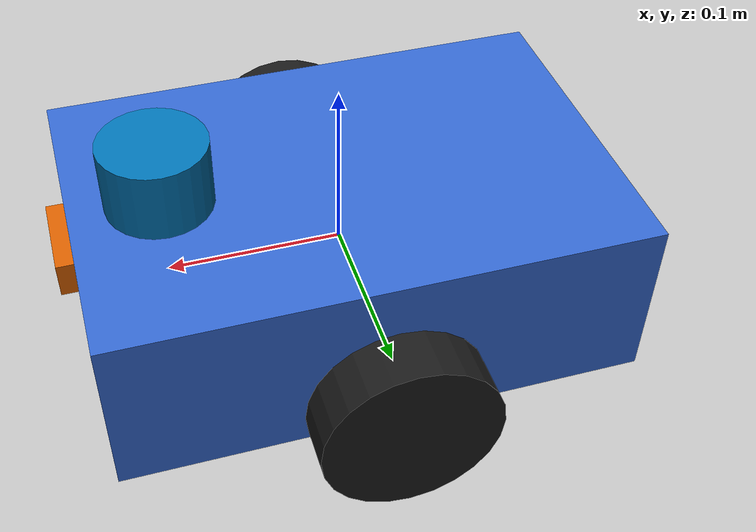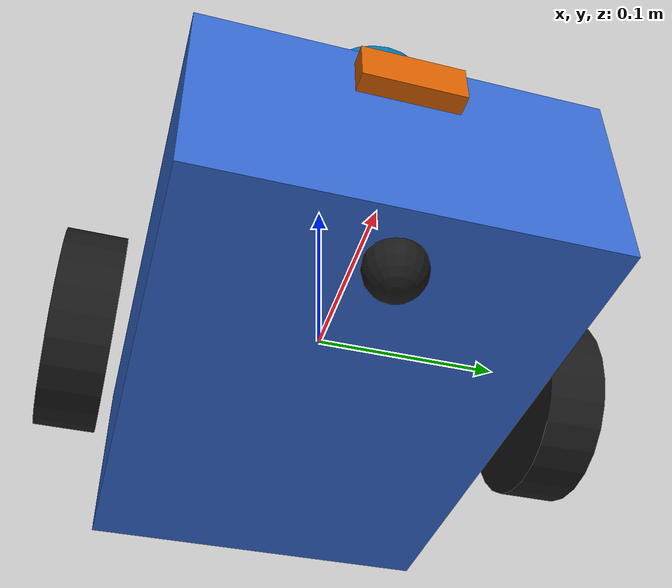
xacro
<?xml version="1.0"?>
<robot name="mi_robot" xmlns:xacro="http://www.ros.org/wiki/xacro">

  <xacro:property name="rueda_radio" value="0.05"/>
  <xacro:property name="rueda_ancho" value="0.03"/>
  <xacro:property name="separacion_ruedas" value="0.25"/>

  <link name="base_link">
    <visual>
      <geometry><box size="0.3 0.2 0.1"/></geometry>
      <material name="azul"><color rgba="0.2 0.4 0.8 1"/></material>
    </visual>
    <collision>
      <geometry><box size="0.3 0.2 0.1"/></geometry>
    </collision>
    <inertial>
      <mass value="1.0"/>
      <inertia
        ixx="${1.0*(0.2*0.2 + 0.1*0.1)/12.0}"
        ixy="0.0"
        ixz="0.0"
        iyy="${1.0*(0.3*0.3 + 0.1*0.1)/12.0}"
        iyz="0.0"
        izz="${1.0*(0.3*0.3 + 0.2*0.2)/12.0}"/>
    </inertial>
  </link>

  <xacro:macro name="rueda" params="prefijo y_signo">
    <link name="rueda_${prefijo}">
      <visual>
        <geometry><cylinder radius="${rueda_radio}" length="${rueda_ancho}"/></geometry>
        <material name="negro"><color rgba="0.1 0.1 0.1 1"/></material>
      </visual>
      <collision>
        <geometry><cylinder radius="${rueda_radio}" length="${rueda_ancho}"/></geometry>
      </collision>
      <inertial>
        <mass value="0.1"/>
        <inertia
          ixx="${0.1*(3*rueda_radio*rueda_radio + rueda_ancho*rueda_ancho)/12.0}"
          ixy="0.0"
          ixz="0.0"
          iyy="${0.1*(3*rueda_radio*rueda_radio + rueda_ancho*rueda_ancho)/12.0}"
          iyz="0.0"
          izz="${0.1*rueda_radio*rueda_radio/2.0}"/>
      </inertial>
    </link>

    <joint name="joint_rueda_${prefijo}" type="continuous">
      <parent link="base_link"/>
      <child link="rueda_${prefijo}"/>
      <origin xyz="0 ${y_signo * separacion_ruedas/2} -0.02" rpy="-1.5708 0 0"/>
      <axis xyz="0 0 1"/>
    </joint>
  </xacro:macro>

  <xacro:rueda prefijo="izq" y_signo="1"/>
  <xacro:rueda prefijo="der" y_signo="-1"/>
  <xacro:property name="caster_radio" value="0.015"/>
  <xacro:property name="caster_masa" value="0.05"/>

  <link name="caster_link">
    <visual>
      <geometry>
        <sphere radius="${caster_radio}"/>
      </geometry>
      <material name="negro"/>
    </visual>

    <collision>
      <geometry>
        <sphere radius="${caster_radio}"/>
      </geometry>
    </collision>

    <inertial>
      <mass value="${caster_masa}"/>
      <inertia
        ixx="${2.0*caster_masa*caster_radio*caster_radio/5.0}"
        ixy="0"
        ixz="0"
        iyy="${2.0*caster_masa*caster_radio*caster_radio/5.0}"
        iyz="0"
        izz="${2.0*caster_masa*caster_radio*caster_radio/5.0}"/>
    </inertial>
  </link>

  <joint name="joint_caster" type="fixed">
    <parent link="base_link"/>
    <child link="caster_link"/>
    <origin xyz="0.12 0 -0.055" rpy="0 0 0"/>
  </joint>

  <link name="lidar_link">
    <visual><geometry><cylinder radius="0.03" length="0.04"/></geometry></visual>
    <collision><geometry><cylinder radius="0.03" length="0.04"/></geometry></collision>
    <inertial>
      <mass value="0.05"/>
      <inertia ixx="${0.05*(3*0.03*0.03 + 0.04*0.04)/12.0}" ixy="0" ixz="0" iyy="${0.05*(3*0.03*0.03 + 0.04*0.04)/12.0}" iyz="0" izz="${0.05*0.03*0.03/2.0}"/>
    </inertial>

  </link>

  <joint name="joint_lidar" type="fixed">
    <parent link="base_link"/>
    <child link="lidar_link"/>
    <origin xyz="0.1 0 0.07" rpy="0 0 0"/>
  </joint>

  <link name="camera_link">
    <visual><geometry><box size="0.02 0.05 0.02"/></geometry></visual>
    <collision><geometry><box size="0.02 0.05 0.02"/></geometry></collision>
    <inertial>
      <mass value="0.02"/>
      <inertia
        ixx="${0.02*(0.05*0.05 + 0.02*0.02)/12.0}"
        ixy="0"
        ixz="0"
        iyy="${0.02*(0.02*0.02 + 0.02*0.02)/12.0}"
        iyz="0"
        izz="${0.02*(0.02*0.02 + 0.05*0.05)/12.0}"/>
    </inertial>
  </link>
  <joint name="joint_camera" type="fixed">
    <parent link="base_link"/>
    <child link="camera_link"/>
    <origin xyz="0.15 0 0.03" rpy="0 0 0"/>
  </joint>
  <link name="camera_optical_link"/>

  <joint name="joint_camera_optical" type="fixed">
    <parent link="camera_link"/>
    <child link="camera_optical_link"/>
    <origin xyz="0 0 0" rpy="${-pi/2} 0 ${-pi/2}"/>
  </joint>

  <gazebo>
    <plugin filename="gz-sim-diff-drive-system" name="gz::sim::systems::DiffDrive">
      <left_joint>joint_rueda_izq</left_joint>
      <right_joint>joint_rueda_der</right_joint>
      <wheel_separation>${separacion_ruedas}</wheel_separation>
      <wheel_radius>${rueda_radio}</wheel_radius>
      <odom_publish_frequency>30</odom_publish_frequency>
      <topic>cmd_vel</topic>
      <odom_topic>odom</odom_topic>
      <frame_id>odom</frame_id>
      <child_frame_id>base_link</child_frame_id>
    </plugin>
        <plugin filename="gz-sim-joint-state-publisher-system"
            name="gz::sim::systems::JointStatePublisher">
      <topic>/world/pista/model/mi_robot/joint_state</topic>
      <joint_name>joint_rueda_izq</joint_name>
      <joint_name>joint_rueda_der</joint_name>
    </plugin>
  </gazebo>

  <gazebo reference="caster_link">
    <mu1>0.01</mu1>
    <mu2>0.01</mu2>
  </gazebo>

  <gazebo reference="lidar_link">
    <sensor name="lidar" type="gpu_lidar">
      <topic>scan</topic>
      <gz_frame_id>lidar_link</gz_frame_id>
      <update_rate>10</update_rate>
      <lidar>
        <scan>
          <horizontal>
            <samples>360</samples>
            <min_angle>-3.14159</min_angle>
            <max_angle>3.14159</max_angle>
          </horizontal>
        </scan>
        <range>
          <min>0.1</min>
          <max>10.0</max>
        </range>
      </lidar>
    </sensor>
  </gazebo>

  <gazebo reference="camera_link">
    <sensor name="camara" type="camera">
      <topic>image_raw</topic>
      <gz_frame_id>camera_optical_link</gz_frame_id>
      <update_rate>30</update_rate>
      <camera>
        <horizontal_fov>1.047</horizontal_fov>
        <image><width>640</width><height>480</height></image>
        <clip><near>0.1</near><far>20</far></clip>
      </camera>
    </sensor>
  </gazebo>

</robot>
